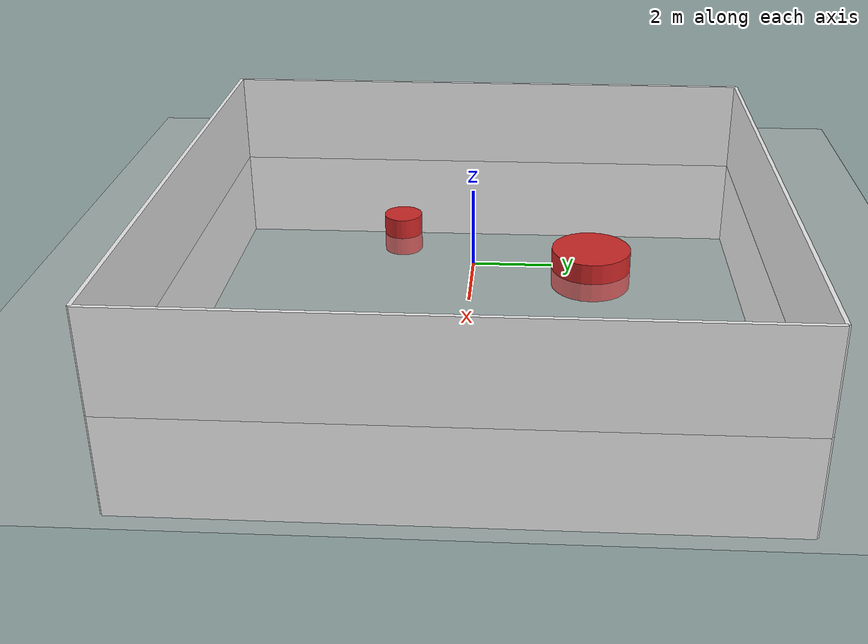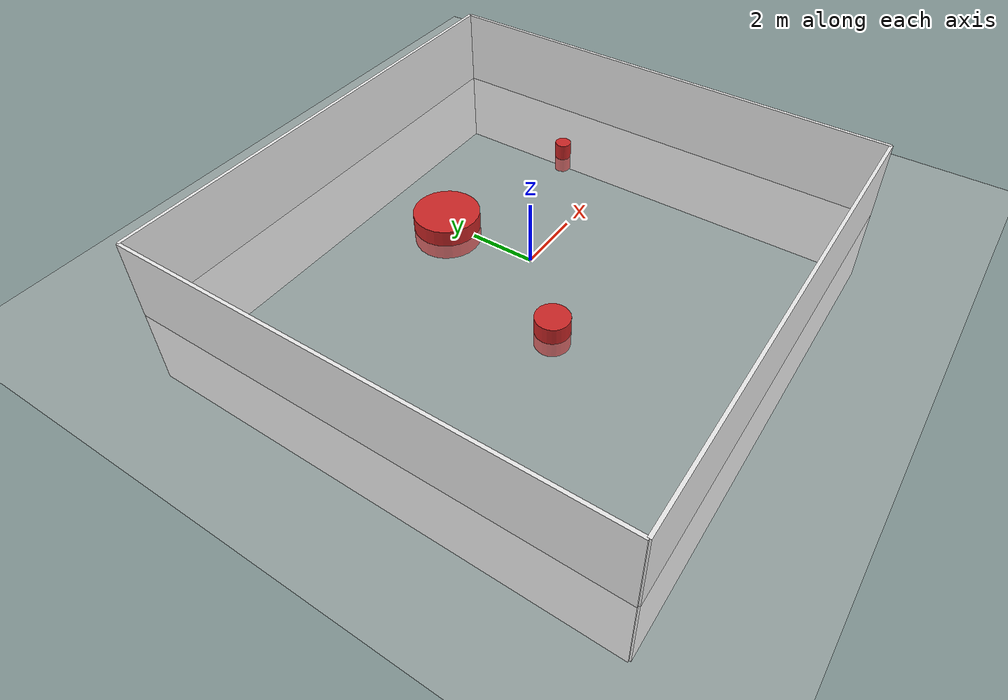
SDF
<sdf version='1.6'>
  <world name='default'>
    <light name='sun' type='directional'>
      <cast_shadows>1</cast_shadows>
      <pose frame=''>0 0 10 0 -0 0</pose>
      <diffuse>0.8 0.8 0.8 1</diffuse>
      <specular>0.2 0.2 0.2 1</specular>
      <attenuation>
        <range>1000</range>
        <constant>0.9</constant>
        <linear>0.01</linear>
        <quadratic>0.001</quadratic>
      </attenuation>
      <direction>-0.5 0.1 -0.9</direction>
    </light>
    <gravity>0 0 -9.8</gravity>
    <magnetic_field>6e-06 2.3e-05 -4.2e-05</magnetic_field>
    <atmosphere type='adiabatic'/>
    <physics name='default_physics' default='0' type='ode'>
      <max_step_size>0.001</max_step_size>
      <real_time_factor>1</real_time_factor>
      <real_time_update_rate>1000</real_time_update_rate>
    </physics>
    <scene>
      <ambient>0.4 0.4 0.4 1</ambient>
      <background>0.7 0.7 0.7 1</background>
      <shadows>1</shadows>
    </scene>
    <audio>
      <device>default</device>
    </audio>
    <wind/>
    <spherical_coordinates>
      <surface_model>EARTH_WGS84</surface_model>
      <latitude_deg>0</latitude_deg>
      <longitude_deg>0</longitude_deg>
      <elevation>0</elevation>
      <heading_deg>0</heading_deg>
    </spherical_coordinates>
		<include>
			<uri>model://ground_plane</uri>
		</include>

		<model name="arena">
      <pose>0 0 0 0 0 0</pose>
      <static>true</static>
			<link name="link">
				<collision name="collision_o1">
		      <pose>0 3 0 0 0 0</pose>
					<geometry>
						<cylinder>
							<radius> 1</radius>
							<length> 1</length>
						</cylinder>
					</geometry>
				</collision>
				<visual name="visual_o1">
		      <pose>0 3 0 0 0 0</pose>
					<geometry>
						<cylinder>
							<radius> 1</radius>
							<length> 1</length>
						</cylinder>
					</geometry>
					<material>
						<script>
							<uri>file://media/materials/scripts/gazebo.material</uri>
							<name>Gazebo/Red</name>
						</script>
					</material>
				</visual>

				<collision name="collision_o2">
		      <pose>5 2 0 0 0 0</pose>
					<geometry>
						<cylinder>
							<radius> 0.25</radius>
							<length> 1</length>
						</cylinder>
					</geometry>
				</collision>
				<visual name="visual_o2">
		      <pose>5 2 0 0 0 0</pose>
					<geometry>
						<cylinder>
							<radius> 0.25</radius>
							<length> 1</length>
						</cylinder>
					</geometry>
					<material>
						<script>
							<uri>file://media/materials/scripts/gazebo.material</uri>
							<name>Gazebo/Red</name>
						</script>
					</material>
				</visual>

				<collision name="collision_o3">
		      <pose>-2 -2 0 0 0 0</pose>
					<geometry>
						<cylinder>
							<radius> 0.5</radius>
							<length> 1</length>
						</cylinder>
					</geometry>
				</collision>
				<visual name="visual_o3">
		      <pose>-2 -2 0 0 0 0</pose>
					<geometry>
						<cylinder>
							<radius> 0.5</radius>
							<length> 1</length>
						</cylinder>
					</geometry>
					<material>
						<script>
							<uri>file://media/materials/scripts/gazebo.material</uri>
							<name>Gazebo/Red</name>
						</script>
					</material>
				</visual>

				<collision name="collision_w3">
		      <pose>0 7.5 0 0 0 0</pose>
					<geometry>
						<box>
							<size> 15 0.1 5</size>
						</box>
					</geometry>
				</collision>
				<visual name="visual_w3">
		      <pose>0 7.5 0 0 0 0</pose>
					<geometry>
						<box>
							<size> 15 0.1 5</size>
						</box>
					</geometry>
					<material>
						<script>
							<uri>file://media/materials/scripts/gazebo.material</uri>
							<name>Gazebo/White</name>
						</script>
					</material>
				</visual>

				<collision name="collision_w4">
		      <pose>7.5 0 0 0 0 0</pose>
					<geometry>
						<box>
							<size> 0.1 15 5</size>
						</box>
					</geometry>
				</collision>
				<visual name="visual_w4">
		      <pose>7.5 0 0 0 0 0</pose>
					<geometry>
						<box>
							<size> 0.1 15 5</size>
						</box>
					</geometry>
					<material>
						<script>
							<uri>file://media/materials/scripts/gazebo.material</uri>
							<name>Gazebo/White</name>
						</script>
					</material>
				</visual>

				<collision name="collision_w5">
		      <pose>0 -7.5 0 0 0 0</pose>
					<geometry>
						<box>
							<size> 15 0.1 5</size>
						</box>
					</geometry>
				</collision>
				<visual name="visual_w5">
		      <pose>0 -7.5 0 0 0 0</pose>
					<geometry>
						<box>
							<size> 15 0.1 5</size>
						</box>
					</geometry>
					<material>
						<script>
							<uri>file://media/materials/scripts/gazebo.material</uri>
							<name>Gazebo/White</name>
						</script>
					</material>
				</visual>

				<collision name="collision_w6">
		      <pose>-7.5 0 0 0 0 0</pose>
					<geometry>
						<box>
							<size> 0.1 15 5</size>
						</box>
					</geometry>
				</collision>
				<visual name="visual_w6">
		      <pose>-7.5 0 0 0 0 0</pose>
					<geometry>
						<box>
							<size> 0.1 15 5</size>
						</box>
					</geometry>
					<material>
						<script>
							<uri>file://media/materials/scripts/gazebo.material</uri>
							<name>Gazebo/White</name>
						</script>
					</material>
				</visual>

			</link>
		</model>

  </world>

</sdf>
